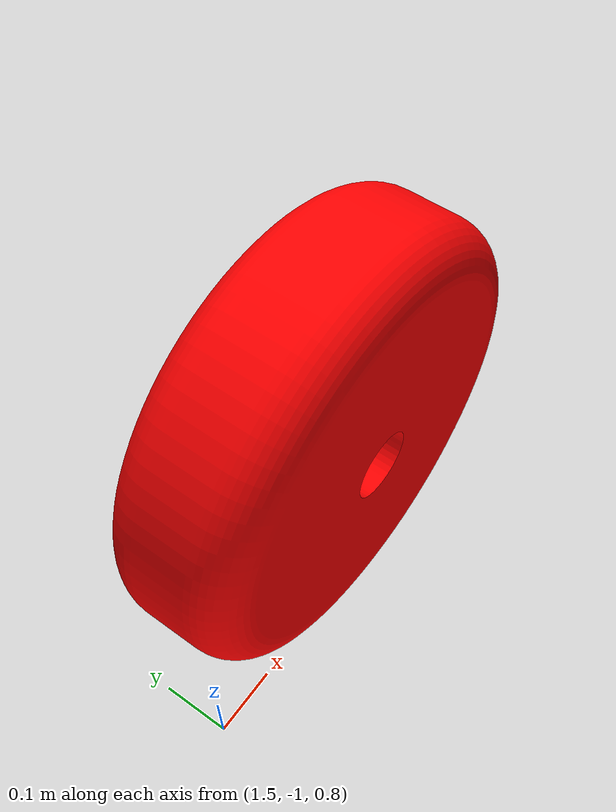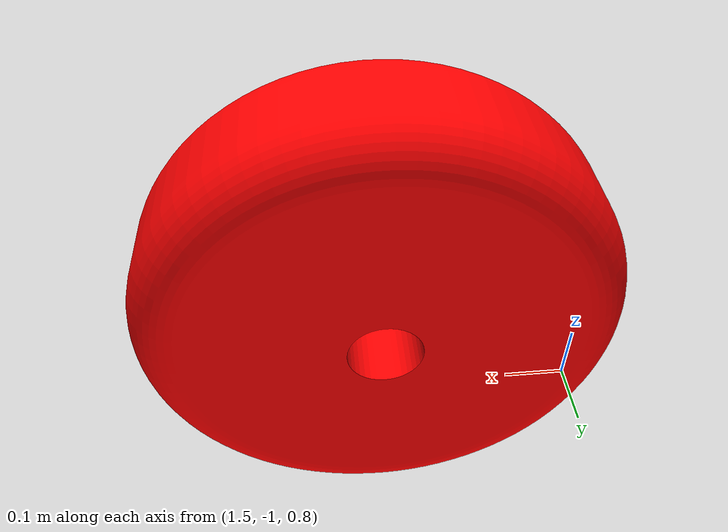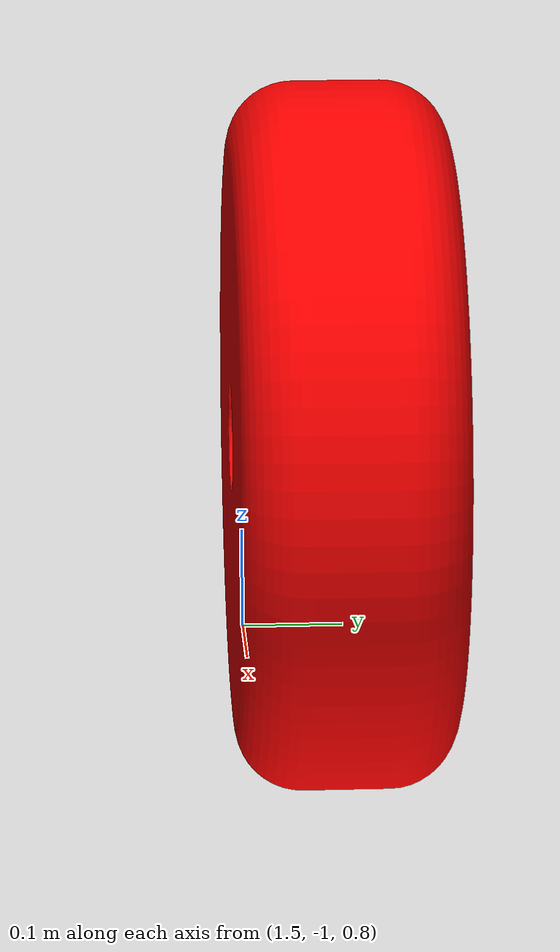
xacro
<robot name="robot">
  <link name="bot_Wheel2_link">
    <inertial>
      <origin rpy="0 0 0" xyz="0 0 0" />
      <mass value="1" />
      <inertia ixx="1" ixy="0" ixz="0" iyy="1" iyz="0" izz="1" />
    </inertial>
    <visual>
      <origin rpy="0 0 0" xyz="0 0 0" />
      <geometry>
        <mesh filename="package://zbot/meshes/bot_Wheel2.dae" />
      </geometry>
    </visual>
    <collision>
      <origin rpy="0 0 0" xyz="0 0 0" />
      <geometry>
        <mesh filename="package://zbot/meshes/bot_Wheel2.dae" />
      </geometry>
    </collision>
  </link>

  <gazebo> <static>true</static></gazebo>
</robot>
